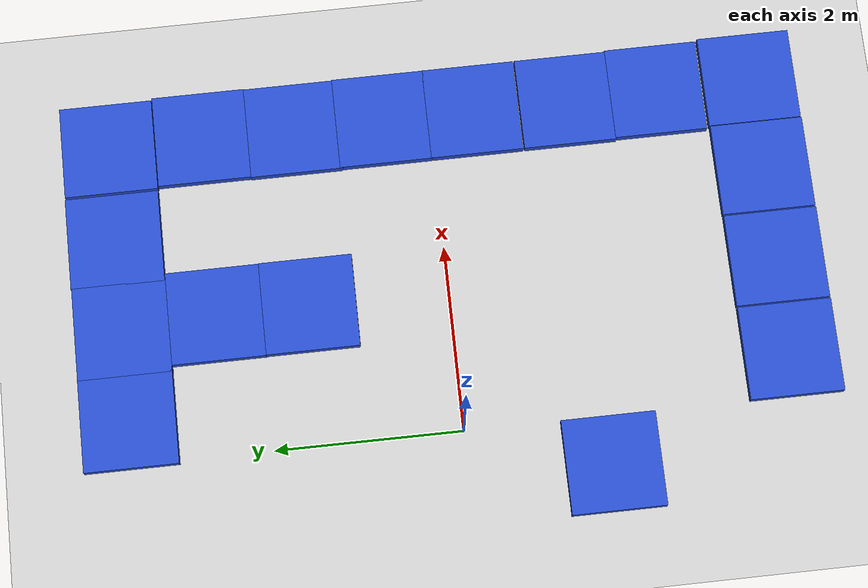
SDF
<sdf version="1.6">
 <world name="default">
  <model name="ground_plane">
   <static>1</static>
   <link name="link">
    <collision name="collision">
     <geometry><plane><normal>0 0 1</normal><size>100 100</size></plane></geometry>
     <surface><friction><ode><mu>100</mu><mu2>50</mu2></ode></friction></surface>
    </collision>
    <visual name="visual">
     <cast_shadows>0</cast_shadows>
     <geometry><plane><normal>0 0 1</normal><size>100 100</size></plane></geometry>
     <material>
      <script><uri>file://media/materials/scripts/gazebo.material</uri><name>Gazebo/Grey</name></script>
     </material>
    </visual>
   </link>
  </model>
  <model name="bloque">
   <link name="unit_box::link">
    <inertial>
     <mass>0.765734</mass>
     <inertia>
      <ixx>0.0668092</ixx>
      <ixy>0</ixy>
      <ixz>0</ixz>
      <iyy>0.0668092</iyy>
      <iyz>0</iyz>
      <izz>0.127622</izz>
     </inertia>
    </inertial>
    <visual name="visual">
     <geometry><box><size>1 1 0.2</size></box></geometry>
     <material>
      <script><name>Gazebo/Blue</name><uri>file://media/materials/scripts/gazebo.material</uri></script>
      <shader type="pixel"><normal_map>__default__</normal_map></shader>
      <ambient>0.1 0.1 0.3 1</ambient>
      <diffuse>0.1 0.1 0.7 1</diffuse>
      <specular>0.01 0.01 0.01 1</specular>
      <emissive>0 0 0 1</emissive>
      <lighting>1</lighting>
     </material>
    </visual>
    <collision name="collision">
     <geometry><box><size>1 1 0.2</size></box></geometry>
     <surface>
      <friction>
       <ode><mu>1</mu><mu2>1</mu2><fdir1>0 0 0</fdir1><slip1>0</slip1><slip2>0</slip2></ode>
       <torsional>
        <coefficient>1</coefficient>
        <patch_radius>0</patch_radius>
        <surface_radius>0</surface_radius>
        <use_patch_radius>1</use_patch_radius>
        <ode><slip>0</slip></ode>
       </torsional>
      </friction>
      <bounce><restitution_coefficient>0</restitution_coefficient><threshold>1e+06</threshold></bounce>
      <contact>
       <collide_without_contact>0</collide_without_contact>
       <collide_without_contact_bitmask>1</collide_without_contact_bitmask>
       <collide_bitmask>1</collide_bitmask>
       <ode>
        <soft_cfm>0</soft_cfm>
        <soft_erp>0.2</soft_erp>
        <kp>1e+13</kp>
        <kd>1</kd>
        <max_vel>0.01</max_vel>
        <min_depth>0</min_depth>
       </ode>
       <bullet>
        <split_impulse>1</split_impulse>
        <split_impulse_penetration_threshold>-0.01</split_impulse_penetration_threshold>
        <soft_cfm>0</soft_cfm>
        <soft_erp>0.2</soft_erp>
        <kp>1e+13</kp>
        <kd>1</kd>
       </bullet>
      </contact>
     </surface>
    </collision>
   </link>
   <static>1</static>
   <pose>3.49037 -0.471233 0 0 -0 0</pose>
  </model>
  <model name="bloque_clone">
   <link name="unit_box::link">
    <inertial>
     <mass>0.765734</mass>
     <inertia>
      <ixx>0.0668092</ixx>
      <ixy>0</ixy>
      <ixz>0</ixz>
      <iyy>0.0668092</iyy>
      <iyz>0</iyz>
      <izz>0.127622</izz>
     </inertia>
    </inertial>
    <visual name="visual">
     <geometry><box><size>1 1 0.2</size></box></geometry>
     <material>
      <script><name>Gazebo/Blue</name><uri>file://media/materials/scripts/gazebo.material</uri></script>
      <shader type="pixel"><normal_map>__default__</normal_map></shader>
      <ambient>0.1 0.1 0.3 1</ambient>
      <diffuse>0.1 0.1 0.7 1</diffuse>
      <specular>0.01 0.01 0.01 1</specular>
      <emissive>0 0 0 1</emissive>
      <lighting>1</lighting>
     </material>
    </visual>
    <collision name="collision">
     <geometry><box><size>1 1 0.2</size></box></geometry>
     <surface>
      <friction>
       <ode><mu>1</mu><mu2>1</mu2><fdir1>0 0 0</fdir1><slip1>0</slip1><slip2>0</slip2></ode>
       <torsional>
        <coefficient>1</coefficient>
        <patch_radius>0</patch_radius>
        <surface_radius>0</surface_radius>
        <use_patch_radius>1</use_patch_radius>
        <ode><slip>0</slip></ode>
       </torsional>
      </friction>
      <bounce><restitution_coefficient>0</restitution_coefficient><threshold>1e+06</threshold></bounce>
      <contact>
       <collide_without_contact>0</collide_without_contact>
       <collide_without_contact_bitmask>1</collide_without_contact_bitmask>
       <collide_bitmask>1</collide_bitmask>
       <ode>
        <soft_cfm>0</soft_cfm>
        <soft_erp>0.2</soft_erp>
        <kp>1e+13</kp>
        <kd>1</kd>
        <max_vel>0.01</max_vel>
        <min_depth>0</min_depth>
       </ode>
       <bullet>
        <split_impulse>1</split_impulse>
        <split_impulse_penetration_threshold>-0.01</split_impulse_penetration_threshold>
        <soft_cfm>0</soft_cfm>
        <soft_erp>0.2</soft_erp>
        <kp>1e+13</kp>
        <kd>1</kd>
       </bullet>
      </contact>
     </surface>
    </collision>
   </link>
   <static>1</static>
   <pose>3.49144 -1.48703 0 0 -0 0</pose>
  </model>
  <model name="bloque_clone_0">
   <link name="unit_box::link">
    <inertial>
     <mass>0.765734</mass>
     <inertia>
      <ixx>0.0668092</ixx>
      <ixy>0</ixy>
      <ixz>0</ixz>
      <iyy>0.0668092</iyy>
      <iyz>0</iyz>
      <izz>0.127622</izz>
     </inertia>
    </inertial>
    <visual name="visual">
     <geometry><box><size>1 1 0.2</size></box></geometry>
     <material>
      <script><name>Gazebo/Blue</name><uri>file://media/materials/scripts/gazebo.material</uri></script>
      <shader type="pixel"><normal_map>__default__</normal_map></shader>
      <ambient>0.1 0.1 0.3 1</ambient>
      <diffuse>0.1 0.1 0.7 1</diffuse>
      <specular>0.01 0.01 0.01 1</specular>
      <emissive>0 0 0 1</emissive>
      <lighting>1</lighting>
     </material>
    </visual>
    <collision name="collision">
     <geometry><box><size>1 1 0.2</size></box></geometry>
     <surface>
      <friction>
       <ode><mu>1</mu><mu2>1</mu2><fdir1>0 0 0</fdir1><slip1>0</slip1><slip2>0</slip2></ode>
       <torsional>
        <coefficient>1</coefficient>
        <patch_radius>0</patch_radius>
        <surface_radius>0</surface_radius>
        <use_patch_radius>1</use_patch_radius>
        <ode><slip>0</slip></ode>
       </torsional>
      </friction>
      <bounce><restitution_coefficient>0</restitution_coefficient><threshold>1e+06</threshold></bounce>
      <contact>
       <collide_without_contact>0</collide_without_contact>
       <collide_without_contact_bitmask>1</collide_without_contact_bitmask>
       <collide_bitmask>1</collide_bitmask>
       <ode>
        <soft_cfm>0</soft_cfm>
        <soft_erp>0.2</soft_erp>
        <kp>1e+13</kp>
        <kd>1</kd>
        <max_vel>0.01</max_vel>
        <min_depth>0</min_depth>
       </ode>
       <bullet>
        <split_impulse>1</split_impulse>
        <split_impulse_penetration_threshold>-0.01</split_impulse_penetration_threshold>
        <soft_cfm>0</soft_cfm>
        <soft_erp>0.2</soft_erp>
        <kp>1e+13</kp>
        <kd>1</kd>
       </bullet>
      </contact>
     </surface>
    </collision>
   </link>
   <static>1</static>
   <pose>3.50514 -2.48151 0 0 -0 0</pose>
  </model>
  <model name="bloque_clone_1">
   <link name="unit_box::link">
    <inertial>
     <mass>0.765734</mass>
     <inertia>
      <ixx>0.0668092</ixx>
      <ixy>0</ixy>
      <ixz>0</ixz>
      <iyy>0.0668092</iyy>
      <iyz>0</iyz>
      <izz>0.127622</izz>
     </inertia>
    </inertial>
    <visual name="visual">
     <geometry><box><size>1 1 0.2</size></box></geometry>
     <material>
      <script><name>Gazebo/Blue</name><uri>file://media/materials/scripts/gazebo.material</uri></script>
      <shader type="pixel"><normal_map>__default__</normal_map></shader>
      <ambient>0.1 0.1 0.3 1</ambient>
      <diffuse>0.1 0.1 0.7 1</diffuse>
      <specular>0.01 0.01 0.01 1</specular>
      <emissive>0 0 0 1</emissive>
      <lighting>1</lighting>
     </material>
    </visual>
    <collision name="collision">
     <geometry><box><size>1 1 0.2</size></box></geometry>
     <surface>
      <friction>
       <ode><mu>1</mu><mu2>1</mu2><fdir1>0 0 0</fdir1><slip1>0</slip1><slip2>0</slip2></ode>
       <torsional>
        <coefficient>1</coefficient>
        <patch_radius>0</patch_radius>
        <surface_radius>0</surface_radius>
        <use_patch_radius>1</use_patch_radius>
        <ode><slip>0</slip></ode>
       </torsional>
      </friction>
      <bounce><restitution_coefficient>0</restitution_coefficient><threshold>1e+06</threshold></bounce>
      <contact>
       <collide_without_contact>0</collide_without_contact>
       <collide_without_contact_bitmask>1</collide_without_contact_bitmask>
       <collide_bitmask>1</collide_bitmask>
       <ode>
        <soft_cfm>0</soft_cfm>
        <soft_erp>0.2</soft_erp>
        <kp>1e+13</kp>
        <kd>1</kd>
        <max_vel>0.01</max_vel>
        <min_depth>0</min_depth>
       </ode>
       <bullet>
        <split_impulse>1</split_impulse>
        <split_impulse_penetration_threshold>-0.01</split_impulse_penetration_threshold>
        <soft_cfm>0</soft_cfm>
        <soft_erp>0.2</soft_erp>
        <kp>1e+13</kp>
        <kd>1</kd>
       </bullet>
      </contact>
     </surface>
    </collision>
   </link>
   <static>1</static>
   <pose>0.490306 -3.52543 0 0 -0 0</pose>
  </model>
  <model name="bloque_clone_2">
   <link name="unit_box::link">
    <inertial>
     <mass>0.765734</mass>
     <inertia>
      <ixx>0.0668092</ixx>
      <ixy>0</ixy>
      <ixz>0</ixz>
      <iyy>0.0668092</iyy>
      <iyz>0</iyz>
      <izz>0.127622</izz>
     </inertia>
    </inertial>
    <visual name="visual">
     <geometry><box><size>1 1 0.2</size></box></geometry>
     <material>
      <script><name>Gazebo/Blue</name><uri>file://media/materials/scripts/gazebo.material</uri></script>
      <shader type="pixel"><normal_map>__default__</normal_map></shader>
      <ambient>0.1 0.1 0.3 1</ambient>
      <diffuse>0.1 0.1 0.7 1</diffuse>
      <specular>0.01 0.01 0.01 1</specular>
      <emissive>0 0 0 1</emissive>
      <lighting>1</lighting>
     </material>
    </visual>
    <collision name="collision">
     <geometry><box><size>1 1 0.2</size></box></geometry>
     <surface>
      <friction>
       <ode><mu>1</mu><mu2>1</mu2><fdir1>0 0 0</fdir1><slip1>0</slip1><slip2>0</slip2></ode>
       <torsional>
        <coefficient>1</coefficient>
        <patch_radius>0</patch_radius>
        <surface_radius>0</surface_radius>
        <use_patch_radius>1</use_patch_radius>
        <ode><slip>0</slip></ode>
       </torsional>
      </friction>
      <bounce><restitution_coefficient>0</restitution_coefficient><threshold>1e+06</threshold></bounce>
      <contact>
       <collide_without_contact>0</collide_without_contact>
       <collide_without_contact_bitmask>1</collide_without_contact_bitmask>
       <collide_bitmask>1</collide_bitmask>
       <ode>
        <soft_cfm>0</soft_cfm>
        <soft_erp>0.2</soft_erp>
        <kp>1e+13</kp>
        <kd>1</kd>
        <max_vel>0.01</max_vel>
        <min_depth>0</min_depth>
       </ode>
       <bullet>
        <split_impulse>1</split_impulse>
        <split_impulse_penetration_threshold>-0.01</split_impulse_penetration_threshold>
        <soft_cfm>0</soft_cfm>
        <soft_erp>0.2</soft_erp>
        <kp>1e+13</kp>
        <kd>1</kd>
       </bullet>
      </contact>
     </surface>
    </collision>
   </link>
   <static>1</static>
   <pose>2.52153 -3.5173 0 0 -0 0</pose>
  </model>
  <model name="bloque_clone_3">
   <link name="unit_box::link">
    <inertial>
     <mass>0.765734</mass>
     <inertia>
      <ixx>0.0668092</ixx>
      <ixy>0</ixy>
      <ixz>0</ixz>
      <iyy>0.0668092</iyy>
      <iyz>0</iyz>
      <izz>0.127622</izz>
     </inertia>
    </inertial>
    <visual name="visual">
     <geometry><box><size>1 1 0.2</size></box></geometry>
     <material>
      <script><name>Gazebo/Blue</name><uri>file://media/materials/scripts/gazebo.material</uri></script>
      <shader type="pixel"><normal_map>__default__</normal_map></shader>
      <ambient>0.1 0.1 0.3 1</ambient>
      <diffuse>0.1 0.1 0.7 1</diffuse>
      <specular>0.01 0.01 0.01 1</specular>
      <emissive>0 0 0 1</emissive>
      <lighting>1</lighting>
     </material>
    </visual>
    <collision name="collision">
     <geometry><box><size>1 1 0.2</size></box></geometry>
     <surface>
      <friction>
       <ode><mu>1</mu><mu2>1</mu2><fdir1>0 0 0</fdir1><slip1>0</slip1><slip2>0</slip2></ode>
       <torsional>
        <coefficient>1</coefficient>
        <patch_radius>0</patch_radius>
        <surface_radius>0</surface_radius>
        <use_patch_radius>1</use_patch_radius>
        <ode><slip>0</slip></ode>
       </torsional>
      </friction>
      <bounce><restitution_coefficient>0</restitution_coefficient><threshold>1e+06</threshold></bounce>
      <contact>
       <collide_without_contact>0</collide_without_contact>
       <collide_without_contact_bitmask>1</collide_without_contact_bitmask>
       <collide_bitmask>1</collide_bitmask>
       <ode>
        <soft_cfm>0</soft_cfm>
        <soft_erp>0.2</soft_erp>
        <kp>1e+13</kp>
        <kd>1</kd>
        <max_vel>0.01</max_vel>
        <min_depth>0</min_depth>
       </ode>
       <bullet>
        <split_impulse>1</split_impulse>
        <split_impulse_penetration_threshold>-0.01</split_impulse_penetration_threshold>
        <soft_cfm>0</soft_cfm>
        <soft_erp>0.2</soft_erp>
        <kp>1e+13</kp>
        <kd>1</kd>
       </bullet>
      </contact>
     </surface>
    </collision>
   </link>
   <static>1</static>
   <pose>3.52779 -3.50967 0 0 -0 0</pose>
  </model>
  <model name="bloque_clone_4">
   <link name="unit_box::link">
    <inertial>
     <mass>0.765734</mass>
     <inertia>
      <ixx>0.0668092</ixx>
      <ixy>0</ixy>
      <ixz>0</ixz>
      <iyy>0.0668092</iyy>
      <iyz>0</iyz>
      <izz>0.127622</izz>
     </inertia>
    </inertial>
    <visual name="visual">
     <geometry><box><size>1 1 0.2</size></box></geometry>
     <material>
      <script><name>Gazebo/Blue</name><uri>file://media/materials/scripts/gazebo.material</uri></script>
      <shader type="pixel"><normal_map>__default__</normal_map></shader>
      <ambient>0.1 0.1 0.3 1</ambient>
      <diffuse>0.1 0.1 0.7 1</diffuse>
      <specular>0.01 0.01 0.01 1</specular>
      <emissive>0 0 0 1</emissive>
      <lighting>1</lighting>
     </material>
    </visual>
    <collision name="collision">
     <geometry><box><size>1 1 0.2</size></box></geometry>
     <surface>
      <friction>
       <ode><mu>1</mu><mu2>1</mu2><fdir1>0 0 0</fdir1><slip1>0</slip1><slip2>0</slip2></ode>
       <torsional>
        <coefficient>1</coefficient>
        <patch_radius>0</patch_radius>
        <surface_radius>0</surface_radius>
        <use_patch_radius>1</use_patch_radius>
        <ode><slip>0</slip></ode>
       </torsional>
      </friction>
      <bounce><restitution_coefficient>0</restitution_coefficient><threshold>1e+06</threshold></bounce>
      <contact>
       <collide_without_contact>0</collide_without_contact>
       <collide_without_contact_bitmask>1</collide_without_contact_bitmask>
       <collide_bitmask>1</collide_bitmask>
       <ode>
        <soft_cfm>0</soft_cfm>
        <soft_erp>0.2</soft_erp>
        <kp>1e+13</kp>
        <kd>1</kd>
        <max_vel>0.01</max_vel>
        <min_depth>0</min_depth>
       </ode>
       <bullet>
        <split_impulse>1</split_impulse>
        <split_impulse_penetration_threshold>-0.01</split_impulse_penetration_threshold>
        <soft_cfm>0</soft_cfm>
        <soft_erp>0.2</soft_erp>
        <kp>1e+13</kp>
        <kd>1</kd>
       </bullet>
      </contact>
     </surface>
    </collision>
   </link>
   <static>1</static>
   <pose>1.50591 -3.52144 0 0 -0 0</pose>
  </model>
  <model name="bloque_clone_14">
   <link name="unit_box::link">
    <inertial>
     <mass>0.765734</mass>
     <inertia>
      <ixx>0.0668092</ixx>
      <ixy>0</ixy>
      <ixz>0</ixz>
      <iyy>0.0668092</iyy>
      <iyz>0</iyz>
      <izz>0.127622</izz>
     </inertia>
    </inertial>
    <visual name="visual">
     <geometry><box><size>1 1 0.2</size></box></geometry>
     <material>
      <script><name>Gazebo/Blue</name><uri>file://media/materials/scripts/gazebo.material</uri></script>
      <shader type="pixel"><normal_map>__default__</normal_map></shader>
      <ambient>0.1 0.1 0.3 1</ambient>
      <diffuse>0.1 0.1 0.7 1</diffuse>
      <specular>0.01 0.01 0.01 1</specular>
      <emissive>0 0 0 1</emissive>
      <lighting>1</lighting>
     </material>
    </visual>
    <collision name="collision">
     <geometry><box><size>1 1 0.2</size></box></geometry>
     <surface>
      <friction>
       <ode><mu>1</mu><mu2>1</mu2><fdir1>0 0 0</fdir1><slip1>0</slip1><slip2>0</slip2></ode>
       <torsional>
        <coefficient>1</coefficient>
        <patch_radius>0</patch_radius>
        <surface_radius>0</surface_radius>
        <use_patch_radius>1</use_patch_radius>
        <ode><slip>0</slip></ode>
       </torsional>
      </friction>
      <bounce><restitution_coefficient>0</restitution_coefficient><threshold>1e+06</threshold></bounce>
      <contact>
       <collide_without_contact>0</collide_without_contact>
       <collide_without_contact_bitmask>1</collide_without_contact_bitmask>
       <collide_bitmask>1</collide_bitmask>
       <ode>
        <soft_cfm>0</soft_cfm>
        <soft_erp>0.2</soft_erp>
        <kp>1e+13</kp>
        <kd>1</kd>
        <max_vel>0.01</max_vel>
        <min_depth>0</min_depth>
       </ode>
       <bullet>
        <split_impulse>1</split_impulse>
        <split_impulse_penetration_threshold>-0.01</split_impulse_penetration_threshold>
        <soft_cfm>0</soft_cfm>
        <soft_erp>0.2</soft_erp>
        <kp>1e+13</kp>
        <kd>1</kd>
       </bullet>
      </contact>
     </surface>
    </collision>
   </link>
   <static>1</static>
   <pose>0.466689 3.49194 0 0 -0 0</pose>
  </model>
  <model name="bloque_clone_20">
   <link name="unit_box::link">
    <inertial>
     <mass>0.765734</mass>
     <inertia>
      <ixx>0.0668092</ixx>
      <ixy>0</ixy>
      <ixz>0</ixz>
      <iyy>0.0668092</iyy>
      <iyz>0</iyz>
      <izz>0.127622</izz>
     </inertia>
    </inertial>
    <visual name="visual">
     <geometry><box><size>1 1 0.2</size></box></geometry>
     <material>
      <script><name>Gazebo/Blue</name><uri>file://media/materials/scripts/gazebo.material</uri></script>
      <shader type="pixel"><normal_map>__default__</normal_map></shader>
      <ambient>0.1 0.1 0.3 1</ambient>
      <diffuse>0.1 0.1 0.7 1</diffuse>
      <specular>0.01 0.01 0.01 1</specular>
      <emissive>0 0 0 1</emissive>
      <lighting>1</lighting>
     </material>
    </visual>
    <collision name="collision">
     <geometry><box><size>1 1 0.2</size></box></geometry>
     <surface>
      <friction>
       <ode><mu>1</mu><mu2>1</mu2><fdir1>0 0 0</fdir1><slip1>0</slip1><slip2>0</slip2></ode>
       <torsional>
        <coefficient>1</coefficient>
        <patch_radius>0</patch_radius>
        <surface_radius>0</surface_radius>
        <use_patch_radius>1</use_patch_radius>
        <ode><slip>0</slip></ode>
       </torsional>
      </friction>
      <bounce><restitution_coefficient>0</restitution_coefficient><threshold>1e+06</threshold></bounce>
      <contact>
       <collide_without_contact>0</collide_without_contact>
       <collide_without_contact_bitmask>1</collide_without_contact_bitmask>
       <collide_bitmask>1</collide_bitmask>
       <ode>
        <soft_cfm>0</soft_cfm>
        <soft_erp>0.2</soft_erp>
        <kp>1e+13</kp>
        <kd>1</kd>
        <max_vel>0.01</max_vel>
        <min_depth>0</min_depth>
       </ode>
       <bullet>
        <split_impulse>1</split_impulse>
        <split_impulse_penetration_threshold>-0.01</split_impulse_penetration_threshold>
        <soft_cfm>0</soft_cfm>
        <soft_erp>0.2</soft_erp>
        <kp>1e+13</kp>
        <kd>1</kd>
       </bullet>
      </contact>
     </surface>
    </collision>
   </link>
   <static>1</static>
   <pose>1.44868 3.49065 0 0 -0 0</pose>
  </model>
  <model name="bloque_clone_21">
   <link name="unit_box::link">
    <inertial>
     <mass>0.765734</mass>
     <inertia>
      <ixx>0.0668092</ixx>
      <ixy>0</ixy>
      <ixz>0</ixz>
      <iyy>0.0668092</iyy>
      <iyz>0</iyz>
      <izz>0.127622</izz>
     </inertia>
    </inertial>
    <visual name="visual">
     <geometry><box><size>1 1 0.2</size></box></geometry>
     <material>
      <script><name>Gazebo/Blue</name><uri>file://media/materials/scripts/gazebo.material</uri></script>
      <shader type="pixel"><normal_map>__default__</normal_map></shader>
      <ambient>0.1 0.1 0.3 1</ambient>
      <diffuse>0.1 0.1 0.7 1</diffuse>
      <specular>0.01 0.01 0.01 1</specular>
      <emissive>0 0 0 1</emissive>
      <lighting>1</lighting>
     </material>
    </visual>
    <collision name="collision">
     <geometry><box><size>1 1 0.2</size></box></geometry>
     <surface>
      <friction>
       <ode><mu>1</mu><mu2>1</mu2><fdir1>0 0 0</fdir1><slip1>0</slip1><slip2>0</slip2></ode>
       <torsional>
        <coefficient>1</coefficient>
        <patch_radius>0</patch_radius>
        <surface_radius>0</surface_radius>
        <use_patch_radius>1</use_patch_radius>
        <ode><slip>0</slip></ode>
       </torsional>
      </friction>
      <bounce><restitution_coefficient>0</restitution_coefficient><threshold>1e+06</threshold></bounce>
      <contact>
       <collide_without_contact>0</collide_without_contact>
       <collide_without_contact_bitmask>1</collide_without_contact_bitmask>
       <collide_bitmask>1</collide_bitmask>
       <ode>
        <soft_cfm>0</soft_cfm>
        <soft_erp>0.2</soft_erp>
        <kp>1e+13</kp>
        <kd>1</kd>
        <max_vel>0.01</max_vel>
        <min_depth>0</min_depth>
       </ode>
       <bullet>
        <split_impulse>1</split_impulse>
        <split_impulse_penetration_threshold>-0.01</split_impulse_penetration_threshold>
        <soft_cfm>0</soft_cfm>
        <soft_erp>0.2</soft_erp>
        <kp>1e+13</kp>
        <kd>1</kd>
       </bullet>
      </contact>
     </surface>
    </collision>
   </link>
   <static>1</static>
   <pose>2.43998 3.49632 0 0 -0 0</pose>
  </model>
  <model name="bloque_clone_22">
   <link name="unit_box::link">
    <inertial>
     <mass>0.765734</mass>
     <inertia>
      <ixx>0.0668092</ixx>
      <ixy>0</ixy>
      <ixz>0</ixz>
      <iyy>0.0668092</iyy>
      <iyz>0</iyz>
      <izz>0.127622</izz>
     </inertia>
    </inertial>
    <visual name="visual">
     <geometry><box><size>1 1 0.2</size></box></geometry>
     <material>
      <script><name>Gazebo/Blue</name><uri>file://media/materials/scripts/gazebo.material</uri></script>
      <shader type="pixel"><normal_map>__default__</normal_map></shader>
      <ambient>0.1 0.1 0.3 1</ambient>
      <diffuse>0.1 0.1 0.7 1</diffuse>
      <specular>0.01 0.01 0.01 1</specular>
      <emissive>0 0 0 1</emissive>
      <lighting>1</lighting>
     </material>
    </visual>
    <collision name="collision">
     <geometry><box><size>1 1 0.2</size></box></geometry>
     <surface>
      <friction>
       <ode><mu>1</mu><mu2>1</mu2><fdir1>0 0 0</fdir1><slip1>0</slip1><slip2>0</slip2></ode>
       <torsional>
        <coefficient>1</coefficient>
        <patch_radius>0</patch_radius>
        <surface_radius>0</surface_radius>
        <use_patch_radius>1</use_patch_radius>
        <ode><slip>0</slip></ode>
       </torsional>
      </friction>
      <bounce><restitution_coefficient>0</restitution_coefficient><threshold>1e+06</threshold></bounce>
      <contact>
       <collide_without_contact>0</collide_without_contact>
       <collide_without_contact_bitmask>1</collide_without_contact_bitmask>
       <collide_bitmask>1</collide_bitmask>
       <ode>
        <soft_cfm>0</soft_cfm>
        <soft_erp>0.2</soft_erp>
        <kp>1e+13</kp>
        <kd>1</kd>
        <max_vel>0.01</max_vel>
        <min_depth>0</min_depth>
       </ode>
       <bullet>
        <split_impulse>1</split_impulse>
        <split_impulse_penetration_threshold>-0.01</split_impulse_penetration_threshold>
        <soft_cfm>0</soft_cfm>
        <soft_erp>0.2</soft_erp>
        <kp>1e+13</kp>
        <kd>1</kd>
       </bullet>
      </contact>
     </surface>
    </collision>
   </link>
   <static>1</static>
   <pose>3.48115 1.48827 0 0 -0 0</pose>
  </model>
  <model name="bloque_clone_23">
   <link name="unit_box::link">
    <inertial>
     <mass>0.765734</mass>
     <inertia>
      <ixx>0.0668092</ixx>
      <ixy>0</ixy>
      <ixz>0</ixz>
      <iyy>0.0668092</iyy>
      <iyz>0</iyz>
      <izz>0.127622</izz>
     </inertia>
    </inertial>
    <visual name="visual">
     <geometry><box><size>1 1 0.2</size></box></geometry>
     <material>
      <script><name>Gazebo/Blue</name><uri>file://media/materials/scripts/gazebo.material</uri></script>
      <shader type="pixel"><normal_map>__default__</normal_map></shader>
      <ambient>0.1 0.1 0.3 1</ambient>
      <diffuse>0.1 0.1 0.7 1</diffuse>
      <specular>0.01 0.01 0.01 1</specular>
      <emissive>0 0 0 1</emissive>
      <lighting>1</lighting>
     </material>
    </visual>
    <collision name="collision">
     <geometry><box><size>1 1 0.2</size></box></geometry>
     <surface>
      <friction>
       <ode><mu>1</mu><mu2>1</mu2><fdir1>0 0 0</fdir1><slip1>0</slip1><slip2>0</slip2></ode>
       <torsional>
        <coefficient>1</coefficient>
        <patch_radius>0</patch_radius>
        <surface_radius>0</surface_radius>
        <use_patch_radius>1</use_patch_radius>
        <ode><slip>0</slip></ode>
       </torsional>
      </friction>
      <bounce><restitution_coefficient>0</restitution_coefficient><threshold>1e+06</threshold></bounce>
      <contact>
       <collide_without_contact>0</collide_without_contact>
       <collide_without_contact_bitmask>1</collide_without_contact_bitmask>
       <collide_bitmask>1</collide_bitmask>
       <ode>
        <soft_cfm>0</soft_cfm>
        <soft_erp>0.2</soft_erp>
        <kp>1e+13</kp>
        <kd>1</kd>
        <max_vel>0.01</max_vel>
        <min_depth>0</min_depth>
       </ode>
       <bullet>
        <split_impulse>1</split_impulse>
        <split_impulse_penetration_threshold>-0.01</split_impulse_penetration_threshold>
        <soft_cfm>0</soft_cfm>
        <soft_erp>0.2</soft_erp>
        <kp>1e+13</kp>
        <kd>1</kd>
       </bullet>
      </contact>
     </surface>
    </collision>
   </link>
   <static>1</static>
   <pose>3.48877 0.520581 0 0 -0 0</pose>
  </model>
  <model name="bloque_clone_24">
   <link name="unit_box::link">
    <inertial>
     <mass>0.765734</mass>
     <inertia>
      <ixx>0.0668092</ixx>
      <ixy>0</ixy>
      <ixz>0</ixz>
      <iyy>0.0668092</iyy>
      <iyz>0</iyz>
      <izz>0.127622</izz>
     </inertia>
    </inertial>
    <visual name="visual">
     <geometry><box><size>1 1 0.2</size></box></geometry>
     <material>
      <script><name>Gazebo/Blue</name><uri>file://media/materials/scripts/gazebo.material</uri></script>
      <shader type="pixel"><normal_map>__default__</normal_map></shader>
      <ambient>0.1 0.1 0.3 1</ambient>
      <diffuse>0.1 0.1 0.7 1</diffuse>
      <specular>0.01 0.01 0.01 1</specular>
      <emissive>0 0 0 1</emissive>
      <lighting>1</lighting>
     </material>
    </visual>
    <collision name="collision">
     <geometry><box><size>1 1 0.2</size></box></geometry>
     <surface>
      <friction>
       <ode><mu>1</mu><mu2>1</mu2><fdir1>0 0 0</fdir1><slip1>0</slip1><slip2>0</slip2></ode>
       <torsional>
        <coefficient>1</coefficient>
        <patch_radius>0</patch_radius>
        <surface_radius>0</surface_radius>
        <use_patch_radius>1</use_patch_radius>
        <ode><slip>0</slip></ode>
       </torsional>
      </friction>
      <bounce><restitution_coefficient>0</restitution_coefficient><threshold>1e+06</threshold></bounce>
      <contact>
       <collide_without_contact>0</collide_without_contact>
       <collide_without_contact_bitmask>1</collide_without_contact_bitmask>
       <collide_bitmask>1</collide_bitmask>
       <ode>
        <soft_cfm>0</soft_cfm>
        <soft_erp>0.2</soft_erp>
        <kp>1e+13</kp>
        <kd>1</kd>
        <max_vel>0.01</max_vel>
        <min_depth>0</min_depth>
       </ode>
       <bullet>
        <split_impulse>1</split_impulse>
        <split_impulse_penetration_threshold>-0.01</split_impulse_penetration_threshold>
        <soft_cfm>0</soft_cfm>
        <soft_erp>0.2</soft_erp>
        <kp>1e+13</kp>
        <kd>1</kd>
       </bullet>
      </contact>
     </surface>
    </collision>
   </link>
   <static>1</static>
   <pose>3.48769 2.48606 0 0 -0 0</pose>
  </model>
  <model name="bloque_clone_25">
   <link name="unit_box::link">
    <inertial>
     <mass>0.765734</mass>
     <inertia>
      <ixx>0.0668092</ixx>
      <ixy>0</ixy>
      <ixz>0</ixz>
      <iyy>0.0668092</iyy>
      <iyz>0</iyz>
      <izz>0.127622</izz>
     </inertia>
    </inertial>
    <visual name="visual">
     <geometry><box><size>1 1 0.2</size></box></geometry>
     <material>
      <script><name>Gazebo/Blue</name><uri>file://media/materials/scripts/gazebo.material</uri></script>
      <shader type="pixel"><normal_map>__default__</normal_map></shader>
      <ambient>0.1 0.1 0.3 1</ambient>
      <diffuse>0.1 0.1 0.7 1</diffuse>
      <specular>0.01 0.01 0.01 1</specular>
      <emissive>0 0 0 1</emissive>
      <lighting>1</lighting>
     </material>
    </visual>
    <collision name="collision">
     <geometry><box><size>1 1 0.2</size></box></geometry>
     <surface>
      <friction>
       <ode><mu>1</mu><mu2>1</mu2><fdir1>0 0 0</fdir1><slip1>0</slip1><slip2>0</slip2></ode>
       <torsional>
        <coefficient>1</coefficient>
        <patch_radius>0</patch_radius>
        <surface_radius>0</surface_radius>
        <use_patch_radius>1</use_patch_radius>
        <ode><slip>0</slip></ode>
       </torsional>
      </friction>
      <bounce><restitution_coefficient>0</restitution_coefficient><threshold>1e+06</threshold></bounce>
      <contact>
       <collide_without_contact>0</collide_without_contact>
       <collide_without_contact_bitmask>1</collide_without_contact_bitmask>
       <collide_bitmask>1</collide_bitmask>
       <ode>
        <soft_cfm>0</soft_cfm>
        <soft_erp>0.2</soft_erp>
        <kp>1e+13</kp>
        <kd>1</kd>
        <max_vel>0.01</max_vel>
        <min_depth>0</min_depth>
       </ode>
       <bullet>
        <split_impulse>1</split_impulse>
        <split_impulse_penetration_threshold>-0.01</split_impulse_penetration_threshold>
        <soft_cfm>0</soft_cfm>
        <soft_erp>0.2</soft_erp>
        <kp>1e+13</kp>
        <kd>1</kd>
       </bullet>
      </contact>
     </surface>
    </collision>
   </link>
   <static>1</static>
   <pose>3.46587 3.49379 0 0 -0 0</pose>
  </model>
  <model name="bloque_clone_22_clone">
   <link name="unit_box::link">
    <inertial>
     <mass>0.765734</mass>
     <inertia>
      <ixx>0.0668092</ixx>
      <ixy>0</ixy>
      <ixz>0</ixz>
      <iyy>0.0668092</iyy>
      <iyz>0</iyz>
      <izz>0.127622</izz>
     </inertia>
    </inertial>
    <visual name="visual">
     <geometry><box><size>1 1 0.2</size></box></geometry>
     <material>
      <script><name>Gazebo/Blue</name><uri>file://media/materials/scripts/gazebo.material</uri></script>
      <shader type="pixel"><normal_map>__default__</normal_map></shader>
      <ambient>0.1 0.1 0.3 1</ambient>
      <diffuse>0.1 0.1 0.7 1</diffuse>
      <specular>0.01 0.01 0.01 1</specular>
      <emissive>0 0 0 1</emissive>
      <lighting>1</lighting>
     </material>
    </visual>
    <collision name="collision">
     <geometry><box><size>1 1 0.2</size></box></geometry>
     <surface>
      <friction>
       <ode><mu>1</mu><mu2>1</mu2><fdir1>0 0 0</fdir1><slip1>0</slip1><slip2>0</slip2></ode>
       <torsional>
        <coefficient>1</coefficient>
        <patch_radius>0</patch_radius>
        <surface_radius>0</surface_radius>
        <use_patch_radius>1</use_patch_radius>
        <ode><slip>0</slip></ode>
       </torsional>
      </friction>
      <bounce><restitution_coefficient>0</restitution_coefficient><threshold>1e+06</threshold></bounce>
      <contact>
       <collide_without_contact>0</collide_without_contact>
       <collide_without_contact_bitmask>1</collide_without_contact_bitmask>
       <collide_bitmask>1</collide_bitmask>
       <ode>
        <soft_cfm>0</soft_cfm>
        <soft_erp>0.2</soft_erp>
        <kp>1e+13</kp>
        <kd>1</kd>
        <max_vel>0.01</max_vel>
        <min_depth>0</min_depth>
       </ode>
       <bullet>
        <split_impulse>1</split_impulse>
        <split_impulse_penetration_threshold>-0.01</split_impulse_penetration_threshold>
        <soft_cfm>0</soft_cfm>
        <soft_erp>0.2</soft_erp>
        <kp>1e+13</kp>
        <kd>1</kd>
       </bullet>
      </contact>
     </surface>
    </collision>
   </link>
   <static>1</static>
   <pose>-0.514061 -1.51388 0 0 -0 0</pose>
  </model>
  <model name="bloque_clone_22_clone_2">
   <link name="unit_box::link">
    <inertial>
     <mass>0.765734</mass>
     <inertia>
      <ixx>0.0668092</ixx>
      <ixy>0</ixy>
      <ixz>0</ixz>
      <iyy>0.0668092</iyy>
      <iyz>0</iyz>
      <izz>0.127622</izz>
     </inertia>
    </inertial>
    <visual name="visual">
     <geometry><box><size>1 1 0.2</size></box></geometry>
     <material>
      <script><name>Gazebo/Blue</name><uri>file://media/materials/scripts/gazebo.material</uri></script>
      <shader type="pixel"><normal_map>__default__</normal_map></shader>
      <ambient>0.1 0.1 0.3 1</ambient>
      <diffuse>0.1 0.1 0.7 1</diffuse>
      <specular>0.01 0.01 0.01 1</specular>
      <emissive>0 0 0 1</emissive>
      <lighting>1</lighting>
     </material>
    </visual>
    <collision name="collision">
     <geometry><box><size>1 1 0.2</size></box></geometry>
     <surface>
      <friction>
       <ode><mu>1</mu><mu2>1</mu2><fdir1>0 0 0</fdir1><slip1>0</slip1><slip2>0</slip2></ode>
       <torsional>
        <coefficient>1</coefficient>
        <patch_radius>0</patch_radius>
        <surface_radius>0</surface_radius>
        <use_patch_radius>1</use_patch_radius>
        <ode><slip>0</slip></ode>
       </torsional>
      </friction>
      <bounce><restitution_coefficient>0</restitution_coefficient><threshold>1e+06</threshold></bounce>
      <contact>
       <collide_without_contact>0</collide_without_contact>
       <collide_without_contact_bitmask>1</collide_without_contact_bitmask>
       <collide_bitmask>1</collide_bitmask>
       <ode>
        <soft_cfm>0</soft_cfm>
        <soft_erp>0.2</soft_erp>
        <kp>1e+13</kp>
        <kd>1</kd>
        <max_vel>0.01</max_vel>
        <min_depth>0</min_depth>
       </ode>
       <bullet>
        <split_impulse>1</split_impulse>
        <split_impulse_penetration_threshold>-0.01</split_impulse_penetration_threshold>
        <soft_cfm>0</soft_cfm>
        <soft_erp>0.2</soft_erp>
        <kp>1e+13</kp>
        <kd>1</kd>
       </bullet>
      </contact>
     </surface>
    </collision>
   </link>
   <static>1</static>
   <pose>1.51573 1.49235 0 0 -0 0</pose>
  </model>
  <model name="bloque_clone_22_clone_3">
   <link name="unit_box::link">
    <inertial>
     <mass>0.765734</mass>
     <inertia>
      <ixx>0.0668092</ixx>
      <ixy>0</ixy>
      <ixz>0</ixz>
      <iyy>0.0668092</iyy>
      <iyz>0</iyz>
      <izz>0.127622</izz>
     </inertia>
    </inertial>
    <visual name="visual">
     <geometry><box><size>1 1 0.2</size></box></geometry>
     <material>
      <script><name>Gazebo/Blue</name><uri>file://media/materials/scripts/gazebo.material</uri></script>
      <shader type="pixel"><normal_map>__default__</normal_map></shader>
      <ambient>0.1 0.1 0.3 1</ambient>
      <diffuse>0.1 0.1 0.7 1</diffuse>
      <specular>0.01 0.01 0.01 1</specular>
      <emissive>0 0 0 1</emissive>
      <lighting>1</lighting>
     </material>
    </visual>
    <collision name="collision">
     <geometry><box><size>1 1 0.2</size></box></geometry>
     <surface>
      <friction>
       <ode><mu>1</mu><mu2>1</mu2><fdir1>0 0 0</fdir1><slip1>0</slip1><slip2>0</slip2></ode>
       <torsional>
        <coefficient>1</coefficient>
        <patch_radius>0</patch_radius>
        <surface_radius>0</surface_radius>
        <use_patch_radius>1</use_patch_radius>
        <ode><slip>0</slip></ode>
       </torsional>
      </friction>
      <bounce><restitution_coefficient>0</restitution_coefficient><threshold>1e+06</threshold></bounce>
      <contact>
       <collide_without_contact>0</collide_without_contact>
       <collide_without_contact_bitmask>1</collide_without_contact_bitmask>
       <collide_bitmask>1</collide_bitmask>
       <ode>
        <soft_cfm>0</soft_cfm>
        <soft_erp>0.2</soft_erp>
        <kp>1e+13</kp>
        <kd>1</kd>
        <max_vel>0.01</max_vel>
        <min_depth>0</min_depth>
       </ode>
       <bullet>
        <split_impulse>1</split_impulse>
        <split_impulse_penetration_threshold>-0.01</split_impulse_penetration_threshold>
        <soft_cfm>0</soft_cfm>
        <soft_erp>0.2</soft_erp>
        <kp>1e+13</kp>
        <kd>1</kd>
       </bullet>
      </contact>
     </surface>
    </collision>
   </link>
   <static>1</static>
   <pose>1.51177 2.49107 0 0 -0 0</pose>
  </model>
 </world>
</sdf>
